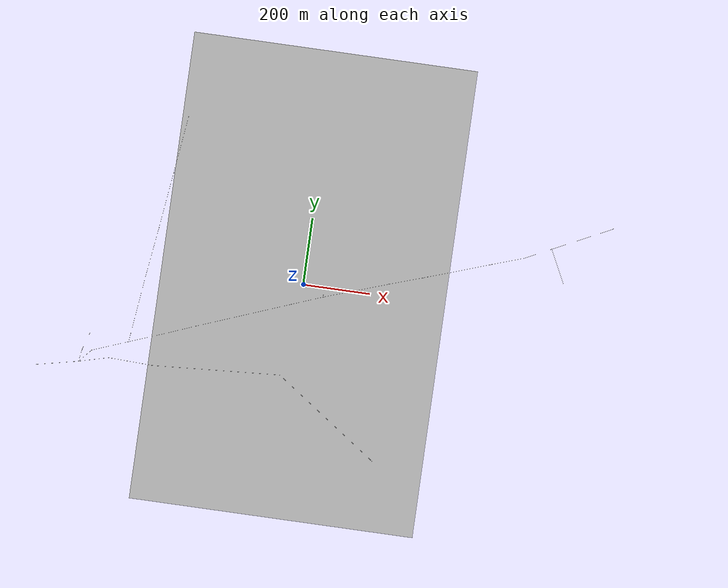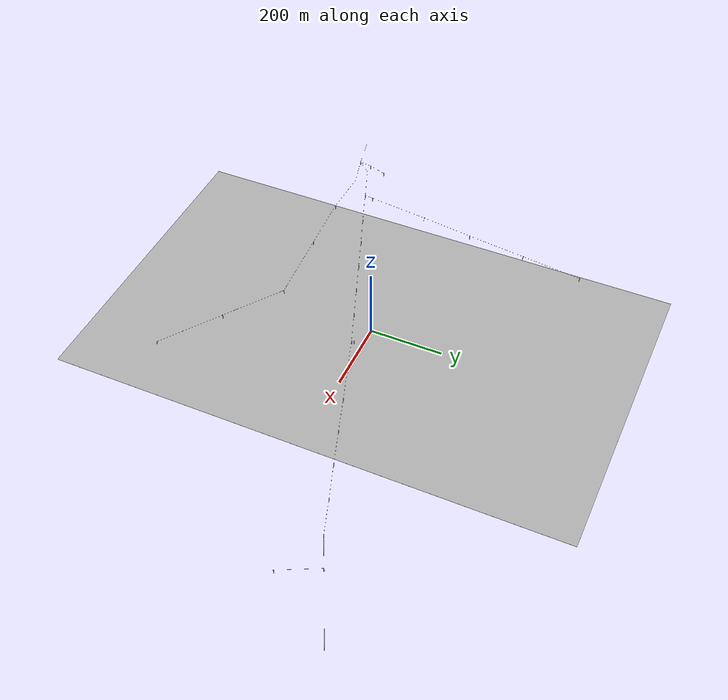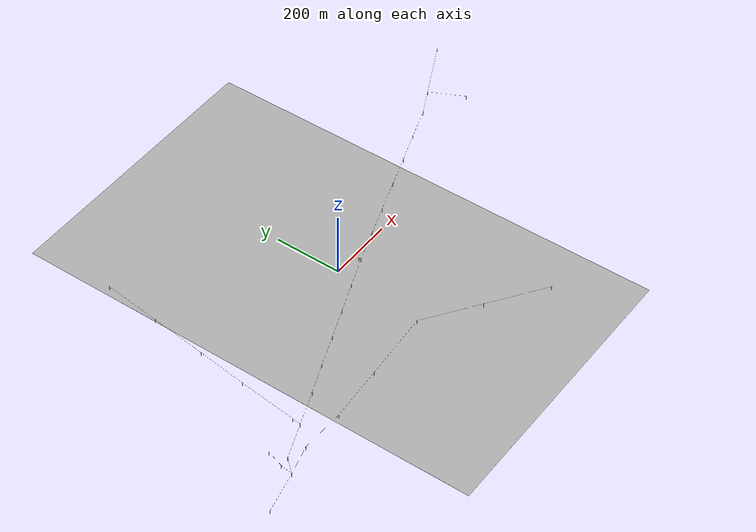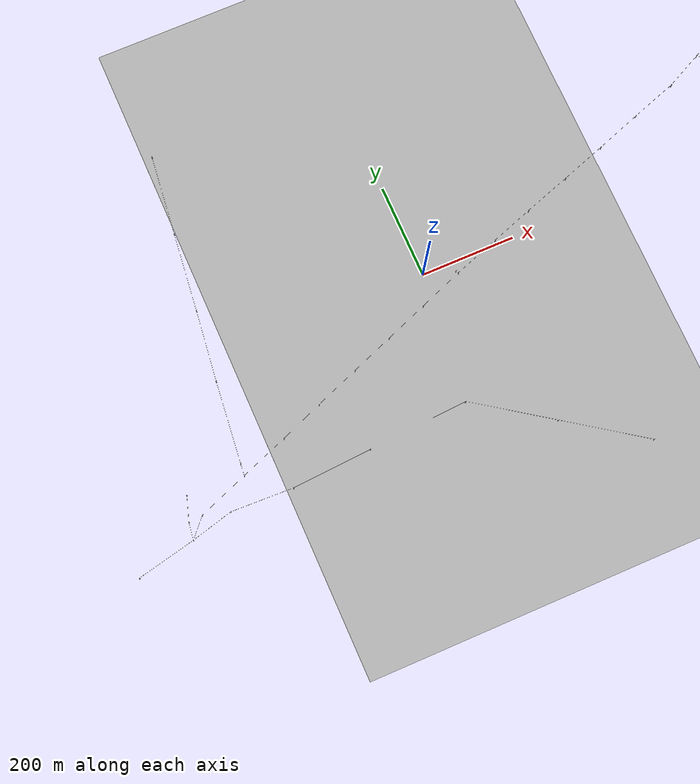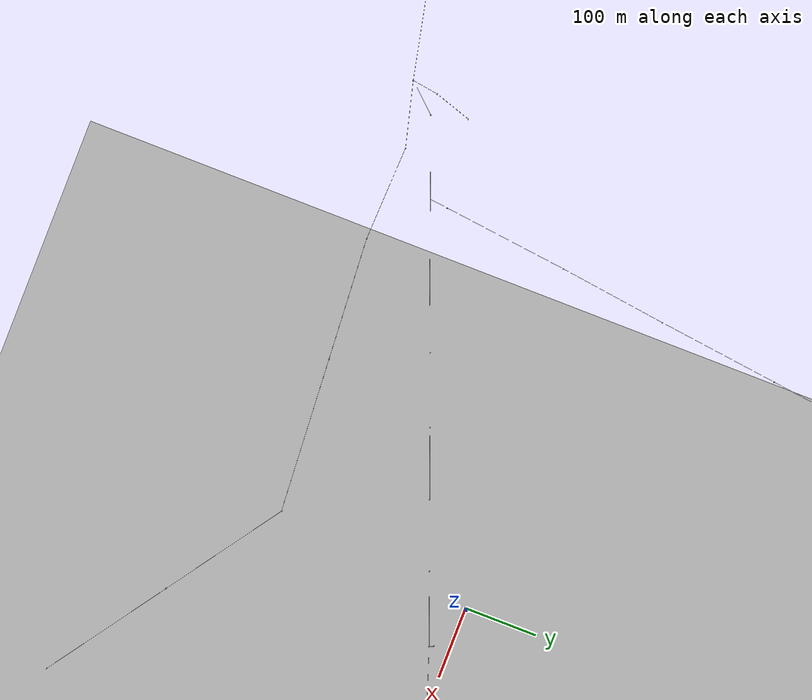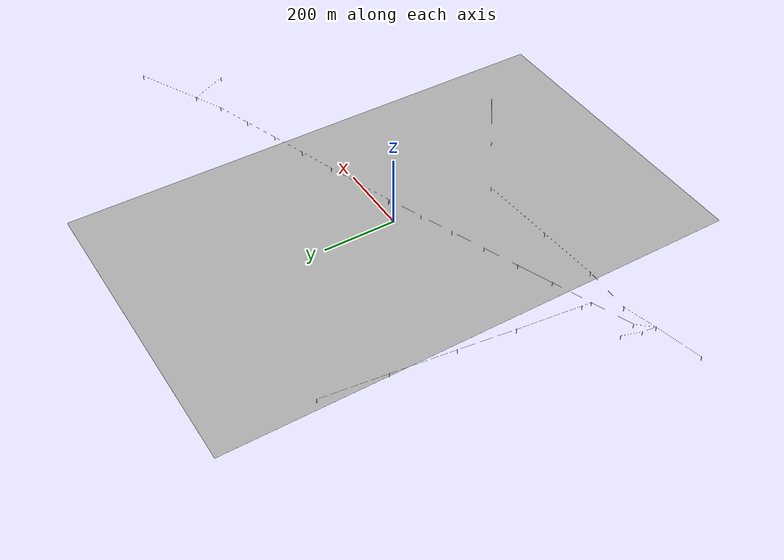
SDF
<sdf version="1.4">
 <world name="ATLAS_power_lines_world_mini">
  <physics type="ode">
   <ode>
    <solver><type>quick</type><iters>10</iters><sor>1.3</sor></solver>
    <constraints>
     <cfm>0</cfm>
     <erp>0.2</erp>
     <contact_max_correcting_vel>100</contact_max_correcting_vel>
     <contact_surface_layer>0.001</contact_surface_layer>
    </constraints>
   </ode>
   <max_step_size>0.004</max_step_size>
   <real_time_factor>1</real_time_factor>
   <real_time_update_rate>250</real_time_update_rate>
   <gravity>0 0 -9.8</gravity>
   <magnetic_field>6e-06 2.3e-05 -4.2e-05</magnetic_field>
  </physics>
  <include><uri>model://ATLAS_ground_mini</uri></include>
  <include><uri>model://sun</uri></include>
  <include>
   <uri>model://charging_pad_bolognini_s1</uri>
   <pose>28 61 0 0 0 1.895919</pose>
   <name>charging_pad</name>
  </include>
  <model name="Pylon_low_res_1">
   <static>1</static>
   <link name="link">
    <visual name="visual">
     <cast_shadows>false</cast_shadows>
     <geometry><cylinder><radius>0.75</radius><length>13</length></cylinder></geometry>
    </visual>
   </link>
   <pose>-409.120 449.015 6.5 0 0 0</pose>
  </model>
  <model name="Pylon_low_res_2">
   <static>1</static>
   <link name="link">
    <visual name="visual">
     <cast_shadows>false</cast_shadows>
     <geometry><cylinder><radius>0.75</radius><length>13</length></cylinder></geometry>
    </visual>
   </link>
   <pose>-430.169 276.424 6.5 0 0 0</pose>
  </model>
  <model name="Pylon_low_res_3">
   <static>1</static>
   <link name="link">
    <visual name="visual">
     <cast_shadows>false</cast_shadows>
     <geometry><cylinder><radius>0.75</radius><length>13</length></cylinder></geometry>
    </visual>
   </link>
   <pose>-450.540 108.275 6.5 0 0 0</pose>
  </model>
  <model name="Pylon_low_res_4">
   <static>1</static>
   <link name="link">
    <visual name="visual">
     <cast_shadows>false</cast_shadows>
     <geometry><cylinder><radius>0.75</radius><length>13</length></cylinder></geometry>
    </visual>
   </link>
   <pose>-470.078 -41.682 6.5 0 0 0</pose>
  </model>
  <model name="Pylon_low_res_5">
   <static>1</static>
   <link name="link">
    <visual name="visual">
     <cast_shadows>false</cast_shadows>
     <geometry><cylinder><radius>0.75</radius><length>13</length></cylinder></geometry>
    </visual>
   </link>
   <pose>-490.208 -215.834 6.5 0 0 0</pose>
  </model>
  <model name="Pylon_low_res_6">
   <static>1</static>
   <link name="link">
    <visual name="visual">
     <cast_shadows>false</cast_shadows>
     <geometry><cylinder><radius>0.75</radius><length>13</length></cylinder></geometry>
    </visual>
   </link>
   <pose>-492.875 -240.864 6.5 0 0 0</pose>
  </model>
  <model name="Pylon_low_res_7">
   <static>1</static>
   <link name="link">
    <visual name="visual">
     <cast_shadows>false</cast_shadows>
     <geometry><cylinder><radius>0.75</radius><length>13</length></cylinder></geometry>
    </visual>
   </link>
   <pose>-598.496 -281.095 6.5 0 0 0</pose>
  </model>
  <model name="Pylon_low_res_8">
   <static>1</static>
   <link name="link">
    <visual name="visual">
     <cast_shadows>false</cast_shadows>
     <geometry><cylinder><radius>0.75</radius><length>13</length></cylinder></geometry>
    </visual>
   </link>
   <pose>-633.009 -319.444 6.5 0 0 0</pose>
  </model>
  <model name="Pylon_low_res_9">
   <static>1</static>
   <link name="link">
    <visual name="visual">
     <cast_shadows>false</cast_shadows>
     <geometry><cylinder><radius>0.75</radius><length>13</length></cylinder></geometry>
    </visual>
   </link>
   <pose>-627.564 -283.028 6.5 0 0 0</pose>
  </model>
  <model name="Pylon_low_res_10">
   <static>1</static>
   <link name="link">
    <visual name="visual">
     <cast_shadows>false</cast_shadows>
     <geometry><cylinder><radius>0.75</radius><length>13</length></cylinder></geometry>
    </visual>
   </link>
   <pose>-611.221 -232.533 6.5 0 0 0</pose>
  </model>
  <model name="Pylon_low_res_11">
   <static>1</static>
   <link name="link">
    <visual name="visual">
     <cast_shadows>false</cast_shadows>
     <geometry><cylinder><radius>0.75</radius><length>13</length></cylinder></geometry>
    </visual>
   </link>
   <pose>-756.512 -346.437 6.5 0 0 0</pose>
  </model>
  <model name="Pylon_low_res_12">
   <static>1</static>
   <link name="link">
    <visual name="visual">
     <cast_shadows>false</cast_shadows>
     <geometry><cylinder><radius>0.75</radius><length>13</length></cylinder></geometry>
    </visual>
   </link>
   <pose>-544.794 -296.507 6.5 0 0 0</pose>
  </model>
  <model name="Pylon_low_res_13">
   <static>1</static>
   <link name="link">
    <visual name="visual">
     <cast_shadows>false</cast_shadows>
     <geometry><cylinder><radius>0.75</radius><length>13</length></cylinder></geometry>
    </visual>
   </link>
   <pose>-413.182 -301.398 6.5 0 0 0</pose>
  </model>
  <model name="Pylon_low_res_14">
   <static>1</static>
   <link name="link">
    <visual name="visual">
     <cast_shadows>false</cast_shadows>
     <geometry><cylinder><radius>0.75</radius><length>13</length></cylinder></geometry>
    </visual>
   </link>
   <pose>-244.429 -290.325 6.5 0 0 0</pose>
  </model>
  <model name="Pylon_low_res_15">
   <static>1</static>
   <link name="link">
    <visual name="visual">
     <cast_shadows>false</cast_shadows>
     <geometry><cylinder><radius>0.75</radius><length>13</length></cylinder></geometry>
    </visual>
   </link>
   <pose>-32.435 -276.509 6.5 0 0 0</pose>
  </model>
  <model name="Pylon_low_res_16">
   <static>1</static>
   <link name="link">
    <visual name="visual">
     <cast_shadows>false</cast_shadows>
     <geometry><cylinder><radius>0.75</radius><length>13</length></cylinder></geometry>
    </visual>
   </link>
   <pose>119.719 -383.291 6.5 0 0 0</pose>
  </model>
  <model name="Pylon_low_res_17">
   <static>1</static>
   <link name="link">
    <visual name="visual">
     <cast_shadows>false</cast_shadows>
     <geometry><cylinder><radius>0.75</radius><length>13</length></cylinder></geometry>
    </visual>
   </link>
   <pose>276.420 -493.459 6.5 0 0 0</pose>
  </model>
  <model name="Pylon_low_res_18">
   <static>1</static>
   <link name="link">
    <visual name="visual">
     <cast_shadows>false</cast_shadows>
     <geometry><cylinder><radius>0.75</radius><length>13</length></cylinder></geometry>
    </visual>
   </link>
   <pose>-391.957 -202.912 6.5 0 0 0</pose>
  </model>
  <model name="Pylon_low_res_19">
   <static>1</static>
   <link name="link">
    <visual name="visual">
     <cast_shadows>false</cast_shadows>
     <geometry><cylinder><radius>0.75</radius><length>13</length></cylinder></geometry>
    </visual>
   </link>
   <pose>-301.302 -167.188 6.5 0 0 0</pose>
  </model>
  <model name="Pylon_low_res_20">
   <static>1</static>
   <link name="link">
    <visual name="visual">
     <cast_shadows>false</cast_shadows>
     <geometry><cylinder><radius>0.75</radius><length>13</length></cylinder></geometry>
    </visual>
   </link>
   <pose>-208.036 -131.632 6.5 0 0 0</pose>
  </model>
  <model name="Pylon_low_res_21">
   <static>1</static>
   <link name="link">
    <visual name="visual">
     <cast_shadows>false</cast_shadows>
     <geometry><cylinder><radius>0.75</radius><length>13</length></cylinder></geometry>
    </visual>
   </link>
   <pose>-118.176 -97.355 6.5 0 0 0</pose>
  </model>
  <model name="Pylon_low_res_22">
   <static>1</static>
   <link name="link">
    <visual name="visual">
     <cast_shadows>false</cast_shadows>
     <geometry><cylinder><radius>0.75</radius><length>13</length></cylinder></geometry>
    </visual>
   </link>
   <pose>-28.178 -63.028 6.5 0 0 0</pose>
  </model>
  <model name="Pylon_low_res_23">
   <static>1</static>
   <link name="link">
    <visual name="visual">
     <cast_shadows>false</cast_shadows>
     <geometry><cylinder><radius>0.75</radius><length>13</length></cylinder></geometry>
    </visual>
   </link>
   <pose>65.174 -27.481 6.5 0 0 0</pose>
  </model>
  <model name="Pylon_low_res_24">
   <static>1</static>
   <link name="link">
    <visual name="visual">
     <cast_shadows>false</cast_shadows>
     <geometry><cylinder><radius>0.75</radius><length>13</length></cylinder></geometry>
    </visual>
   </link>
   <pose>62.631 -21.742 6.5 0 0 0</pose>
  </model>
  <model name="Pylon_low_res_25">
   <static>1</static>
   <link name="link">
    <visual name="visual">
     <cast_shadows>false</cast_shadows>
     <geometry><cylinder><radius>0.75</radius><length>13</length></cylinder></geometry>
    </visual>
   </link>
   <pose>163.171 6.176 6.5 0 0 0</pose>
  </model>
  <model name="Pylon_low_res_26">
   <static>1</static>
   <link name="link">
    <visual name="visual">
     <cast_shadows>false</cast_shadows>
     <geometry><cylinder><radius>0.75</radius><length>13</length></cylinder></geometry>
    </visual>
   </link>
   <pose>252.476 37.164 6.5 0 0 0</pose>
  </model>
  <model name="Pylon_low_res_27">
   <static>1</static>
   <link name="link">
    <visual name="visual">
     <cast_shadows>false</cast_shadows>
     <geometry><cylinder><radius>0.75</radius><length>13</length></cylinder></geometry>
    </visual>
   </link>
   <pose>351.502 70.480 6.5 0 0 0</pose>
  </model>
  <model name="Pylon_low_res_28">
   <static>1</static>
   <link name="link">
    <visual name="visual">
     <cast_shadows>false</cast_shadows>
     <geometry><cylinder><radius>0.75</radius><length>13</length></cylinder></geometry>
    </visual>
   </link>
   <pose>447.289 103.004 6.5 0 0 0</pose>
  </model>
  <model name="Pylon_low_res_29">
   <static>1</static>
   <link name="link">
    <visual name="visual">
     <cast_shadows>false</cast_shadows>
     <geometry><cylinder><radius>0.75</radius><length>13</length></cylinder></geometry>
    </visual>
   </link>
   <pose>543.828 136.838 6.5 0 0 0</pose>
  </model>
  <model name="Pylon_low_res_30">
   <static>1</static>
   <link name="link">
    <visual name="visual">
     <cast_shadows>false</cast_shadows>
     <geometry><cylinder><radius>0.75</radius><length>13</length></cylinder></geometry>
    </visual>
   </link>
   <pose>641.898 170.080 6.5 0 0 0</pose>
  </model>
  <model name="Pylon_low_res_31">
   <static>1</static>
   <link name="link">
    <visual name="visual">
     <cast_shadows>false</cast_shadows>
     <geometry><cylinder><radius>0.75</radius><length>13</length></cylinder></geometry>
    </visual>
   </link>
   <pose>719.770 208.398 6.5 0 0 0</pose>
  </model>
  <model name="Pylon_low_res_32">
   <static>1</static>
   <link name="link">
    <visual name="visual">
     <cast_shadows>false</cast_shadows>
     <geometry><cylinder><radius>0.75</radius><length>13</length></cylinder></geometry>
    </visual>
   </link>
   <pose>769.668 108.103 6.5 0 0 0</pose>
  </model>
  <model name="Pylon_low_res_33">
   <static>1</static>
   <link name="link">
    <visual name="visual">
     <cast_shadows>false</cast_shadows>
     <geometry><cylinder><radius>0.75</radius><length>13</length></cylinder></geometry>
    </visual>
   </link>
   <pose>894.348 293.824 6.5 0 0 0</pose>
  </model>
  <model name="Wire_low_res_1">
   <static>1</static>
   <link name="link">
    <visual name="visual">
     <cast_shadows>false</cast_shadows>
     <geometry><cylinder><radius>0.15</radius><length>173.870</length></cylinder></geometry>
    </visual>
   </link>
   <pose>-419.645 362.720 12 1.571 0 3.020</pose>
  </model>
  <model name="Wire_low_res_2">
   <static>1</static>
   <link name="link">
    <visual name="visual">
     <cast_shadows>false</cast_shadows>
     <geometry><cylinder><radius>0.15</radius><length>173.870</length></cylinder></geometry>
    </visual>
   </link>
   <pose>-419.645 362.720 12 1.571 0 -0.121</pose>
  </model>
  <model name="Wire_low_res_3">
   <static>1</static>
   <link name="link">
    <visual name="visual">
     <cast_shadows>false</cast_shadows>
     <geometry><cylinder><radius>0.15</radius><length>169.378</length></cylinder></geometry>
    </visual>
   </link>
   <pose>-440.355 192.350 12 1.571 0 3.021</pose>
  </model>
  <model name="Wire_low_res_4">
   <static>1</static>
   <link name="link">
    <visual name="visual">
     <cast_shadows>false</cast_shadows>
     <geometry><cylinder><radius>0.15</radius><length>169.378</length></cylinder></geometry>
    </visual>
   </link>
   <pose>-440.355 192.350 12 1.571 0 -0.121</pose>
  </model>
  <model name="Wire_low_res_5">
   <static>1</static>
   <link name="link">
    <visual name="visual">
     <cast_shadows>false</cast_shadows>
     <geometry><cylinder><radius>0.15</radius><length>151.224</length></cylinder></geometry>
    </visual>
   </link>
   <pose>-460.309 33.297 12 1.571 0 3.012</pose>
  </model>
  <model name="Wire_low_res_6">
   <static>1</static>
   <link name="link">
    <visual name="visual">
     <cast_shadows>false</cast_shadows>
     <geometry><cylinder><radius>0.15</radius><length>151.224</length></cylinder></geometry>
    </visual>
   </link>
   <pose>-460.309 33.297 12 1.571 0 -0.130</pose>
  </model>
  <model name="Wire_low_res_7">
   <static>1</static>
   <link name="link">
    <visual name="visual">
     <cast_shadows>false</cast_shadows>
     <geometry><cylinder><radius>0.15</radius><length>175.312</length></cylinder></geometry>
    </visual>
   </link>
   <pose>-480.143 -128.758 12 1.571 0 3.027</pose>
  </model>
  <model name="Wire_low_res_8">
   <static>1</static>
   <link name="link">
    <visual name="visual">
     <cast_shadows>false</cast_shadows>
     <geometry><cylinder><radius>0.15</radius><length>175.312</length></cylinder></geometry>
    </visual>
   </link>
   <pose>-480.143 -128.758 12 1.571 0 -0.115</pose>
  </model>
  <model name="Wire_low_res_9">
   <static>1</static>
   <link name="link">
    <visual name="visual">
     <cast_shadows>false</cast_shadows>
     <geometry><cylinder><radius>0.15</radius><length>25.172</length></cylinder></geometry>
    </visual>
   </link>
   <pose>-491.542 -228.349 12 1.571 0 3.035</pose>
  </model>
  <model name="Wire_low_res_10">
   <static>1</static>
   <link name="link">
    <visual name="visual">
     <cast_shadows>false</cast_shadows>
     <geometry><cylinder><radius>0.15</radius><length>25.172</length></cylinder></geometry>
    </visual>
   </link>
   <pose>-491.542 -228.349 12 1.571 0 -0.106</pose>
  </model>
  <model name="Wire_low_res_11">
   <static>1</static>
   <link name="link">
    <visual name="visual">
     <cast_shadows>false</cast_shadows>
     <geometry><cylinder><radius>0.15</radius><length>113.024</length></cylinder></geometry>
    </visual>
   </link>
   <pose>-545.686 -260.980 12 1.571 0 1.935</pose>
  </model>
  <model name="Wire_low_res_12">
   <static>1</static>
   <link name="link">
    <visual name="visual">
     <cast_shadows>false</cast_shadows>
     <geometry><cylinder><radius>0.15</radius><length>107.818</length></cylinder></geometry>
    </visual>
   </link>
   <pose>-442.416 -221.888 12 1.571 0 -1.211</pose>
  </model>
  <model name="Wire_low_res_13">
   <static>1</static>
   <link name="link">
    <visual name="visual">
     <cast_shadows>false</cast_shadows>
     <geometry><cylinder><radius>0.15</radius><length>113.024</length></cylinder></geometry>
    </visual>
   </link>
   <pose>-545.686 -260.980 12 1.571 0 -1.207</pose>
  </model>
  <model name="Wire_low_res_14">
   <static>1</static>
   <link name="link">
    <visual name="visual">
     <cast_shadows>false</cast_shadows>
     <geometry><cylinder><radius>0.15</radius><length>51.593</length></cylinder></geometry>
    </visual>
   </link>
   <pose>-615.753 -300.270 12 1.571 0 2.409</pose>
  </model>
  <model name="Wire_low_res_15">
   <static>1</static>
   <link name="link">
    <visual name="visual">
     <cast_shadows>false</cast_shadows>
     <geometry><cylinder><radius>0.15</radius><length>51.593</length></cylinder></geometry>
    </visual>
   </link>
   <pose>-615.753 -300.270 12 1.571 0 -0.733</pose>
  </model>
  <model name="Wire_low_res_16">
   <static>1</static>
   <link name="link">
    <visual name="visual">
     <cast_shadows>false</cast_shadows>
     <geometry><cylinder><radius>0.15</radius><length>36.821</length></cylinder></geometry>
    </visual>
   </link>
   <pose>-630.287 -301.236 12 1.571 0 -0.148</pose>
  </model>
  <model name="Wire_low_res_17">
   <static>1</static>
   <link name="link">
    <visual name="visual">
     <cast_shadows>false</cast_shadows>
     <geometry><cylinder><radius>0.15</radius><length>126.418</length></cylinder></geometry>
    </visual>
   </link>
   <pose>-694.761 -332.941 12 1.571 0 1.786</pose>
  </model>
  <model name="Wire_low_res_18">
   <static>1</static>
   <link name="link">
    <visual name="visual">
     <cast_shadows>false</cast_shadows>
     <geometry><cylinder><radius>0.15</radius><length>91.148</length></cylinder></geometry>
    </visual>
   </link>
   <pose>-588.902 -307.976 12 1.571 0 -1.316</pose>
  </model>
  <model name="Wire_low_res_19">
   <static>1</static>
   <link name="link">
    <visual name="visual">
     <cast_shadows>false</cast_shadows>
     <geometry><cylinder><radius>0.15</radius><length>36.821</length></cylinder></geometry>
    </visual>
   </link>
   <pose>-630.287 -301.236 12 1.571 0 2.993</pose>
  </model>
  <model name="Wire_low_res_20">
   <static>1</static>
   <link name="link">
    <visual name="visual">
     <cast_shadows>false</cast_shadows>
     <geometry><cylinder><radius>0.15</radius><length>53.074</length></cylinder></geometry>
    </visual>
   </link>
   <pose>-619.393 -257.781 12 1.571 0 -0.313</pose>
  </model>
  <model name="Wire_low_res_21">
   <static>1</static>
   <link name="link">
    <visual name="visual">
     <cast_shadows>false</cast_shadows>
     <geometry><cylinder><radius>0.15</radius><length>53.074</length></cylinder></geometry>
    </visual>
   </link>
   <pose>-619.393 -257.781 12 1.571 0 2.829</pose>
  </model>
  <model name="Wire_low_res_22">
   <static>1</static>
   <link name="link">
    <visual name="visual">
     <cast_shadows>false</cast_shadows>
     <geometry><cylinder><radius>0.15</radius><length>126.418</length></cylinder></geometry>
    </visual>
   </link>
   <pose>-694.761 -332.941 12 1.571 0 -1.356</pose>
  </model>
  <model name="Wire_low_res_23">
   <static>1</static>
   <link name="link">
    <visual name="visual">
     <cast_shadows>false</cast_shadows>
     <geometry><cylinder><radius>0.15</radius><length>91.148</length></cylinder></geometry>
    </visual>
   </link>
   <pose>-588.902 -307.976 12 1.571 0 1.825</pose>
  </model>
  <model name="Wire_low_res_24">
   <static>1</static>
   <link name="link">
    <visual name="visual">
     <cast_shadows>false</cast_shadows>
     <geometry><cylinder><radius>0.15</radius><length>131.703</length></cylinder></geometry>
    </visual>
   </link>
   <pose>-478.988 -298.953 12 1.571 0 4.675</pose>
  </model>
  <model name="Wire_low_res_25">
   <static>1</static>
   <link name="link">
    <visual name="visual">
     <cast_shadows>false</cast_shadows>
     <geometry><cylinder><radius>0.15</radius><length>131.703</length></cylinder></geometry>
    </visual>
   </link>
   <pose>-478.988 -298.953 12 1.571 0 1.534</pose>
  </model>
  <model name="Wire_low_res_26">
   <static>1</static>
   <link name="link">
    <visual name="visual">
     <cast_shadows>false</cast_shadows>
     <geometry><cylinder><radius>0.15</radius><length>169.116</length></cylinder></geometry>
    </visual>
   </link>
   <pose>-328.806 -295.862 12 1.571 0 -1.505</pose>
  </model>
  <model name="Wire_low_res_27">
   <static>1</static>
   <link name="link">
    <visual name="visual">
     <cast_shadows>false</cast_shadows>
     <geometry><cylinder><radius>0.15</radius><length>169.116</length></cylinder></geometry>
    </visual>
   </link>
   <pose>-328.806 -295.862 12 1.571 0 1.636</pose>
  </model>
  <model name="Wire_low_res_28">
   <static>1</static>
   <link name="link">
    <visual name="visual">
     <cast_shadows>false</cast_shadows>
     <geometry><cylinder><radius>0.15</radius><length>212.444</length></cylinder></geometry>
    </visual>
   </link>
   <pose>-138.432 -283.417 12 1.571 0 -1.506</pose>
  </model>
  <model name="Wire_low_res_29">
   <static>1</static>
   <link name="link">
    <visual name="visual">
     <cast_shadows>false</cast_shadows>
     <geometry><cylinder><radius>0.15</radius><length>212.444</length></cylinder></geometry>
    </visual>
   </link>
   <pose>-138.432 -283.417 12 1.571 0 1.636</pose>
  </model>
  <model name="Wire_low_res_30">
   <static>1</static>
   <link name="link">
    <visual name="visual">
     <cast_shadows>false</cast_shadows>
     <geometry><cylinder><radius>0.15</radius><length>185.885</length></cylinder></geometry>
    </visual>
   </link>
   <pose>43.642 -329.900 12 1.571 0 4.100</pose>
  </model>
  <model name="Wire_low_res_31">
   <static>1</static>
   <link name="link">
    <visual name="visual">
     <cast_shadows>false</cast_shadows>
     <geometry><cylinder><radius>0.15</radius><length>185.885</length></cylinder></geometry>
    </visual>
   </link>
   <pose>43.642 -329.900 12 1.571 0 0.959</pose>
  </model>
  <model name="Wire_low_res_32">
   <static>1</static>
   <link name="link">
    <visual name="visual">
     <cast_shadows>false</cast_shadows>
     <geometry><cylinder><radius>0.15</radius><length>191.552</length></cylinder></geometry>
    </visual>
   </link>
   <pose>198.070 -438.375 12 1.571 0 4.100</pose>
  </model>
  <model name="Wire_low_res_33">
   <static>1</static>
   <link name="link">
    <visual name="visual">
     <cast_shadows>false</cast_shadows>
     <geometry><cylinder><radius>0.15</radius><length>191.552</length></cylinder></geometry>
    </visual>
   </link>
   <pose>198.070 -438.375 12 1.571 0 0.958</pose>
  </model>
  <model name="Wire_low_res_34">
   <static>1</static>
   <link name="link">
    <visual name="visual">
     <cast_shadows>false</cast_shadows>
     <geometry><cylinder><radius>0.15</radius><length>107.818</length></cylinder></geometry>
    </visual>
   </link>
   <pose>-442.416 -221.888 12 1.571 0 1.931</pose>
  </model>
  <model name="Wire_low_res_35">
   <static>1</static>
   <link name="link">
    <visual name="visual">
     <cast_shadows>false</cast_shadows>
     <geometry><cylinder><radius>0.15</radius><length>97.440</length></cylinder></geometry>
    </visual>
   </link>
   <pose>-346.630 -185.050 12 1.571 0 -1.195</pose>
  </model>
  <model name="Wire_low_res_36">
   <static>1</static>
   <link name="link">
    <visual name="visual">
     <cast_shadows>false</cast_shadows>
     <geometry><cylinder><radius>0.15</radius><length>97.440</length></cylinder></geometry>
    </visual>
   </link>
   <pose>-346.630 -185.050 12 1.571 0 1.946</pose>
  </model>
  <model name="Wire_low_res_37">
   <static>1</static>
   <link name="link">
    <visual name="visual">
     <cast_shadows>false</cast_shadows>
     <geometry><cylinder><radius>0.15</radius><length>99.814</length></cylinder></geometry>
    </visual>
   </link>
   <pose>-254.669 -149.410 12 1.571 0 -1.207</pose>
  </model>
  <model name="Wire_low_res_38">
   <static>1</static>
   <link name="link">
    <visual name="visual">
     <cast_shadows>false</cast_shadows>
     <geometry><cylinder><radius>0.15</radius><length>99.814</length></cylinder></geometry>
    </visual>
   </link>
   <pose>-254.669 -149.410 12 1.571 0 1.935</pose>
  </model>
  <model name="Wire_low_res_39">
   <static>1</static>
   <link name="link">
    <visual name="visual">
     <cast_shadows>false</cast_shadows>
     <geometry><cylinder><radius>0.15</radius><length>96.176</length></cylinder></geometry>
    </visual>
   </link>
   <pose>-163.106 -114.494 12 1.571 0 -1.206</pose>
  </model>
  <model name="Wire_low_res_40">
   <static>1</static>
   <link name="link">
    <visual name="visual">
     <cast_shadows>false</cast_shadows>
     <geometry><cylinder><radius>0.15</radius><length>96.176</length></cylinder></geometry>
    </visual>
   </link>
   <pose>-163.106 -114.494 12 1.571 0 1.935</pose>
  </model>
  <model name="Wire_low_res_41">
   <static>1</static>
   <link name="link">
    <visual name="visual">
     <cast_shadows>false</cast_shadows>
     <geometry><cylinder><radius>0.15</radius><length>96.322</length></cylinder></geometry>
    </visual>
   </link>
   <pose>-73.177 -80.192 12 1.571 0 -1.206</pose>
  </model>
  <model name="Wire_low_res_42">
   <static>1</static>
   <link name="link">
    <visual name="visual">
     <cast_shadows>false</cast_shadows>
     <geometry><cylinder><radius>0.15</radius><length>96.322</length></cylinder></geometry>
    </visual>
   </link>
   <pose>-73.177 -80.192 12 1.571 0 1.935</pose>
  </model>
  <model name="Wire_low_res_43">
   <static>1</static>
   <link name="link">
    <visual name="visual">
     <cast_shadows>false</cast_shadows>
     <geometry><cylinder><radius>0.15</radius><length>99.891</length></cylinder></geometry>
    </visual>
   </link>
   <pose>18.498 -45.255 12 1.571 0 -1.207</pose>
  </model>
  <model name="Wire_low_res_44">
   <static>1</static>
   <link name="link">
    <visual name="visual">
     <cast_shadows>false</cast_shadows>
     <geometry><cylinder><radius>0.15</radius><length>99.891</length></cylinder></geometry>
    </visual>
   </link>
   <pose>18.498 -45.255 12 1.571 0 1.935</pose>
  </model>
  <model name="Wire_low_res_45">
   <static>1</static>
   <link name="link">
    <visual name="visual">
     <cast_shadows>false</cast_shadows>
     <geometry><cylinder><radius>0.15</radius><length>6.277</length></cylinder></geometry>
    </visual>
   </link>
   <pose>63.903 -24.612 12 1.571 0 0.417</pose>
  </model>
  <model name="Wire_low_res_46">
   <static>1</static>
   <link name="link">
    <visual name="visual">
     <cast_shadows>false</cast_shadows>
     <geometry><cylinder><radius>0.15</radius><length>103.616</length></cylinder></geometry>
    </visual>
   </link>
   <pose>114.173 -10.653 12 1.571 0 -1.240</pose>
  </model>
  <model name="Wire_low_res_47">
   <static>1</static>
   <link name="link">
    <visual name="visual">
     <cast_shadows>false</cast_shadows>
     <geometry><cylinder><radius>0.15</radius><length>6.277</length></cylinder></geometry>
    </visual>
   </link>
   <pose>63.903 -24.612 12 1.571 0 3.559</pose>
  </model>
  <model name="Wire_low_res_48">
   <static>1</static>
   <link name="link">
    <visual name="visual">
     <cast_shadows>false</cast_shadows>
     <geometry><cylinder><radius>0.15</radius><length>103.616</length></cylinder></geometry>
    </visual>
   </link>
   <pose>114.173 -10.653 12 1.571 0 1.902</pose>
  </model>
  <model name="Wire_low_res_49">
   <static>1</static>
   <link name="link">
    <visual name="visual">
     <cast_shadows>false</cast_shadows>
     <geometry><cylinder><radius>0.15</radius><length>94.529</length></cylinder></geometry>
    </visual>
   </link>
   <pose>207.824 21.670 12 1.571 0 -1.237</pose>
  </model>
  <model name="Wire_low_res_50">
   <static>1</static>
   <link name="link">
    <visual name="visual">
     <cast_shadows>false</cast_shadows>
     <geometry><cylinder><radius>0.15</radius><length>94.529</length></cylinder></geometry>
    </visual>
   </link>
   <pose>207.824 21.670 12 1.571 0 1.905</pose>
  </model>
  <model name="Wire_low_res_51">
   <static>1</static>
   <link name="link">
    <visual name="visual">
     <cast_shadows>false</cast_shadows>
     <geometry><cylinder><radius>0.15</radius><length>104.480</length></cylinder></geometry>
    </visual>
   </link>
   <pose>301.989 53.822 12 1.571 0 -1.246</pose>
  </model>
  <model name="Wire_low_res_52">
   <static>1</static>
   <link name="link">
    <visual name="visual">
     <cast_shadows>false</cast_shadows>
     <geometry><cylinder><radius>0.15</radius><length>104.480</length></cylinder></geometry>
    </visual>
   </link>
   <pose>301.989 53.822 12 1.571 0 1.895</pose>
  </model>
  <model name="Wire_low_res_53">
   <static>1</static>
   <link name="link">
    <visual name="visual">
     <cast_shadows>false</cast_shadows>
     <geometry><cylinder><radius>0.15</radius><length>101.158</length></cylinder></geometry>
    </visual>
   </link>
   <pose>399.396 86.742 12 1.571 0 -1.243</pose>
  </model>
  <model name="Wire_low_res_54">
   <static>1</static>
   <link name="link">
    <visual name="visual">
     <cast_shadows>false</cast_shadows>
     <geometry><cylinder><radius>0.15</radius><length>101.158</length></cylinder></geometry>
    </visual>
   </link>
   <pose>399.396 86.742 12 1.571 0 1.898</pose>
  </model>
  <model name="Wire_low_res_55">
   <static>1</static>
   <link name="link">
    <visual name="visual">
     <cast_shadows>false</cast_shadows>
     <geometry><cylinder><radius>0.15</radius><length>102.296</length></cylinder></geometry>
    </visual>
   </link>
   <pose>495.559 119.921 12 1.571 0 -1.234</pose>
  </model>
  <model name="Wire_low_res_56">
   <static>1</static>
   <link name="link">
    <visual name="visual">
     <cast_shadows>false</cast_shadows>
     <geometry><cylinder><radius>0.15</radius><length>102.296</length></cylinder></geometry>
    </visual>
   </link>
   <pose>495.559 119.921 12 1.571 0 1.908</pose>
  </model>
  <model name="Wire_low_res_57">
   <static>1</static>
   <link name="link">
    <visual name="visual">
     <cast_shadows>false</cast_shadows>
     <geometry><cylinder><radius>0.15</radius><length>103.551</length></cylinder></geometry>
    </visual>
   </link>
   <pose>592.863 153.459 12 1.571 0 -1.244</pose>
  </model>
  <model name="Wire_low_res_58">
   <static>1</static>
   <link name="link">
    <visual name="visual">
     <cast_shadows>false</cast_shadows>
     <geometry><cylinder><radius>0.15</radius><length>103.551</length></cylinder></geometry>
    </visual>
   </link>
   <pose>592.863 153.459 12 1.571 0 1.898</pose>
  </model>
  <model name="Wire_low_res_59">
   <static>1</static>
   <link name="link">
    <visual name="visual">
     <cast_shadows>false</cast_shadows>
     <geometry><cylinder><radius>0.15</radius><length>86.789</length></cylinder></geometry>
    </visual>
   </link>
   <pose>680.834 189.239 12 1.571 0 -1.114</pose>
  </model>
  <model name="Wire_low_res_60">
   <static>1</static>
   <link name="link">
    <visual name="visual">
     <cast_shadows>false</cast_shadows>
     <geometry><cylinder><radius>0.15</radius><length>86.789</length></cylinder></geometry>
    </visual>
   </link>
   <pose>680.834 189.239 12 1.571 0 2.028</pose>
  </model>
  <model name="Wire_low_res_61">
   <static>1</static>
   <link name="link">
    <visual name="visual">
     <cast_shadows>false</cast_shadows>
     <geometry><cylinder><radius>0.15</radius><length>112.022</length></cylinder></geometry>
    </visual>
   </link>
   <pose>744.719 158.251 12 1.571 0 3.603</pose>
  </model>
  <model name="Wire_low_res_62">
   <static>1</static>
   <link name="link">
    <visual name="visual">
     <cast_shadows>false</cast_shadows>
     <geometry><cylinder><radius>0.15</radius><length>194.358</length></cylinder></geometry>
    </visual>
   </link>
   <pose>807.059 251.111 12 1.571 0 -1.116</pose>
  </model>
  <model name="Wire_low_res_63">
   <static>1</static>
   <link name="link">
    <visual name="visual">
     <cast_shadows>false</cast_shadows>
     <geometry><cylinder><radius>0.15</radius><length>112.022</length></cylinder></geometry>
    </visual>
   </link>
   <pose>744.719 158.251 12 1.571 0 0.462</pose>
  </model>
  <model name="Wire_low_res_64">
   <static>1</static>
   <link name="link">
    <visual name="visual">
     <cast_shadows>false</cast_shadows>
     <geometry><cylinder><radius>0.15</radius><length>194.358</length></cylinder></geometry>
    </visual>
   </link>
   <pose>807.059 251.111 12 1.571 0 2.026</pose>
  </model>
 </world>
</sdf>

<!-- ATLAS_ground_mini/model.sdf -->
<sdf version="1.5">
  <model name="ATLAS_ground_mini">
    <static>true</static>
    <link name="floor">
      <collision name="collision">
        <geometry>
          <box>
            <size>855 1410 .1</size>
          </box>
        </geometry>
      </collision>
      <visual name="visual">
        <cast_shadows>false</cast_shadows>
        <geometry>
          <box>
            <size>855 1407 .1</size>
          </box>
        </geometry>
        <material>
          <script>
            <uri>model://ATLAS_ground_mini/materials/scripts</uri>
            <uri>model://ATLAS_ground_mini/materials/textures</uri>
            <name>ATLAS_ground_mini</name>
          </script>
        </material>
      </visual>
    </link>
  </model>
</sdf>

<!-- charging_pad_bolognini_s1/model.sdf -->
<sdf version="1.5">
  <model name="charging_pad_bolognini_s1">
    <static>true</static>
    <link name="floor">
      <collision name="collision">
        <geometry>
          <mesh>
            <uri>model://charging_pad_bolognini_s1/meshes/charging_pad_bolognini_s1.dae</uri>
          </mesh>
        </geometry>
      </collision>
      <visual name="visual">
        <geometry>
          <mesh>
            <uri>model://charging_pad_bolognini_s1/meshes/charging_pad_bolognini_s1.dae</uri>
          </mesh>
        </geometry>
      </visual>
    </link>
  </model>
</sdf>
